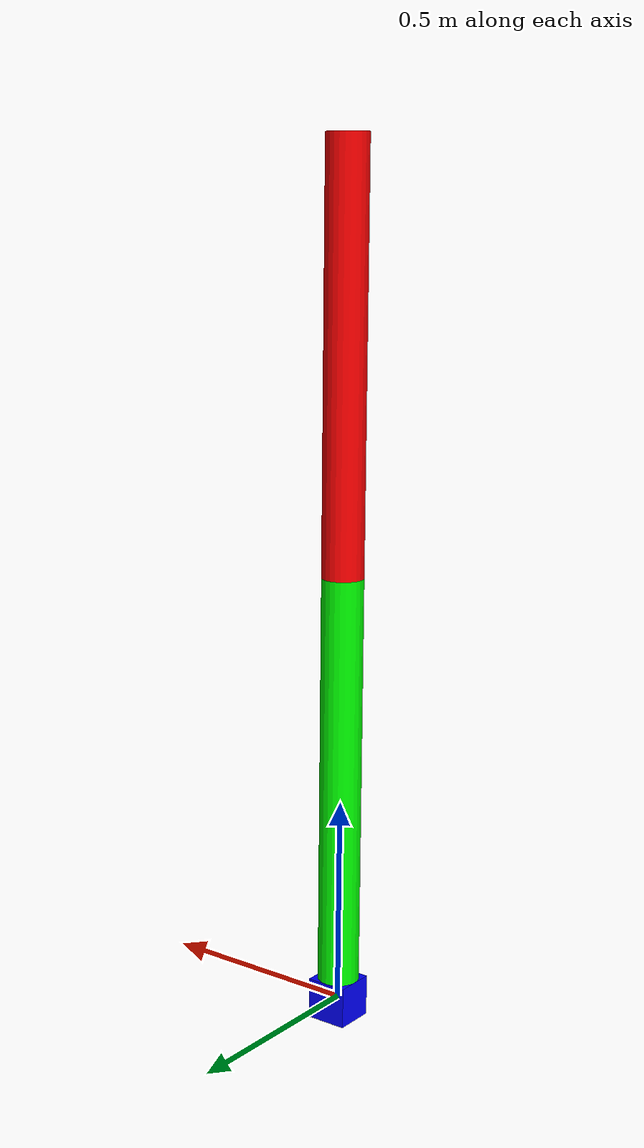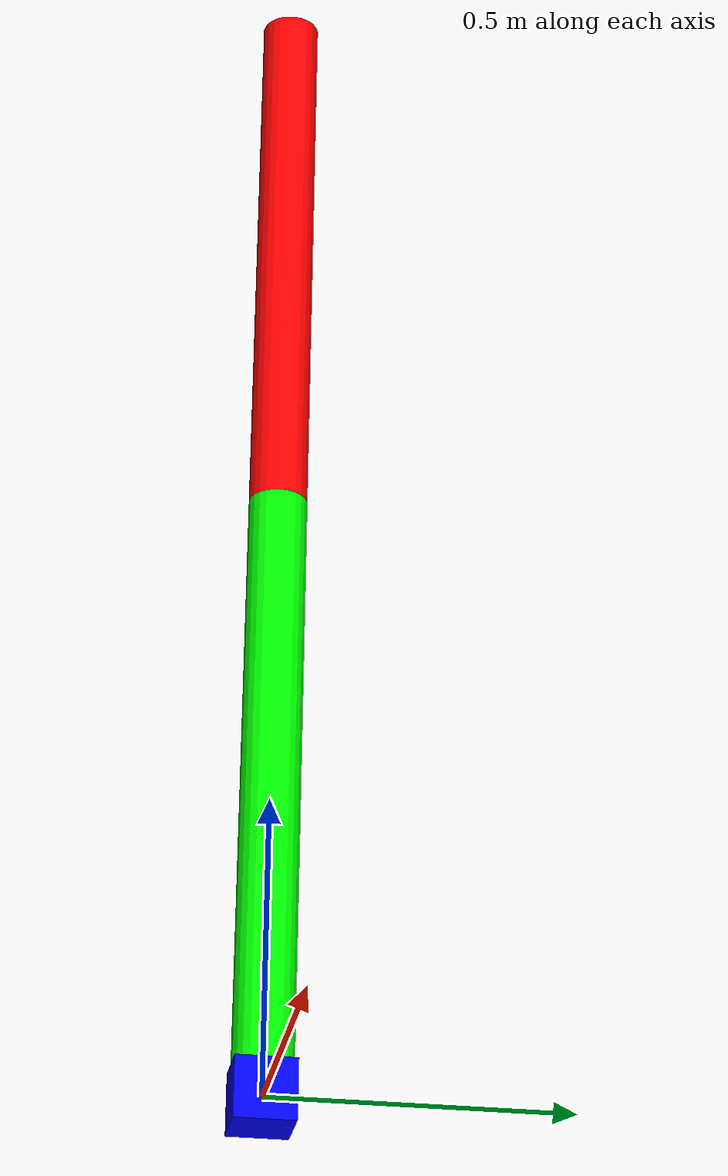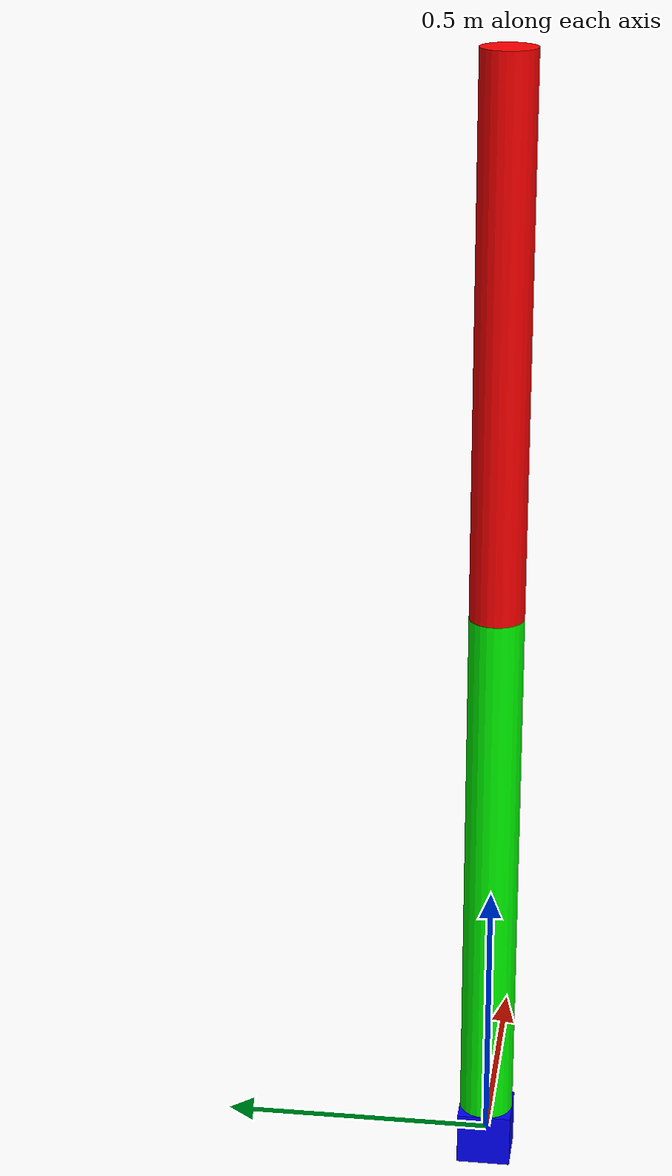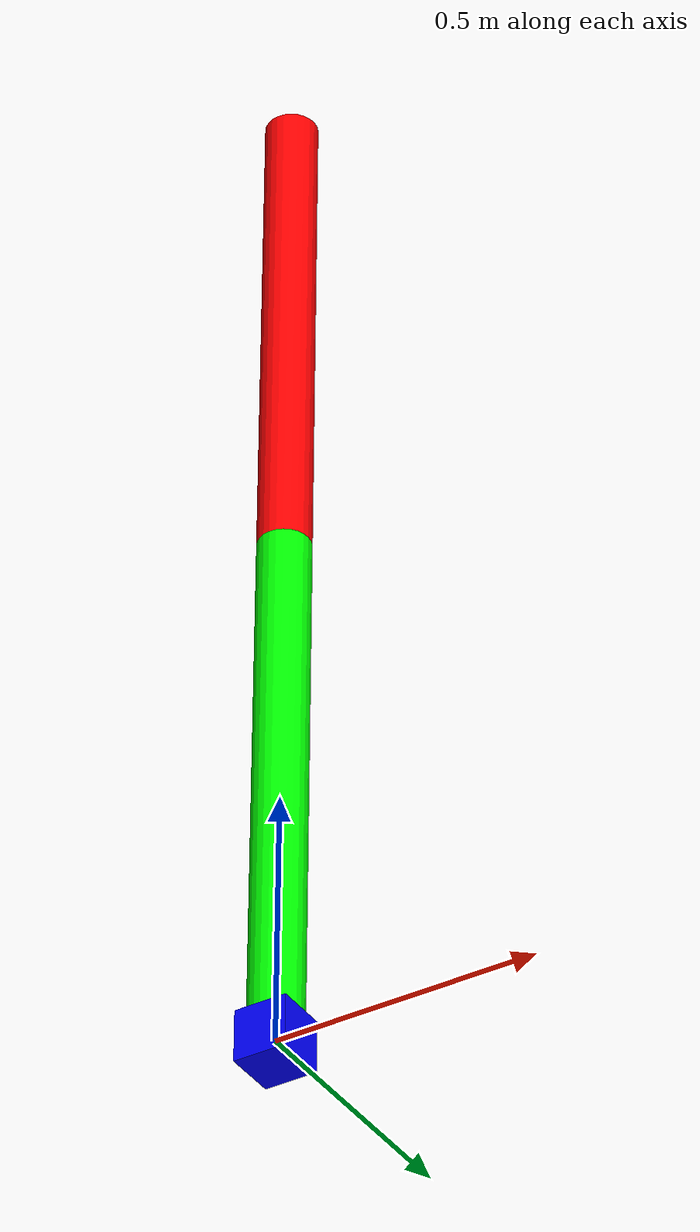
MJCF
<?xml version="1.0" ?>
<mujoco model="two_r_robot">
    <compiler angle="radian" />
    <default>
        <joint limited="true" damping="1"/>
        <geom type="cylinder" size="0.05 0.5" rgba="0.8 0.6 0.4 1" />
    </default>
    <worldbody>
        <body name="base" pos="0 0 0">
            <geom name="base" type="box" size="0.05 0.05 0.05" rgba="0 0 1 1"/>
            <body name="link1" pos="0 0 0.05">
                <joint name="joint1" type="hinge" pos="0 0 0" axis="0 1 0" range="-1.57 1.57"/>
                <geom fromto="0 0 0 0 0 1" size="0.05" rgba="0 1 0 1"/>
                <body name="link2" pos="0 0 1">
                    <joint name="joint2" type="hinge" pos="0 0 0" axis="0 1 0" range="-1.57 1.57"/>
                    <geom fromto="0 0 0 0 0 1" size="0.05" rgba="1 0 0 1"/>
                </body>
            </body>
        </body>
    </worldbody>
    <actuator>
        <motor joint="joint1" ctrlrange="-1 1" ctrllimited="true"/>
        <motor joint="joint2" ctrlrange="-1 1" ctrllimited="true"/>
    </actuator>
</mujoco>
